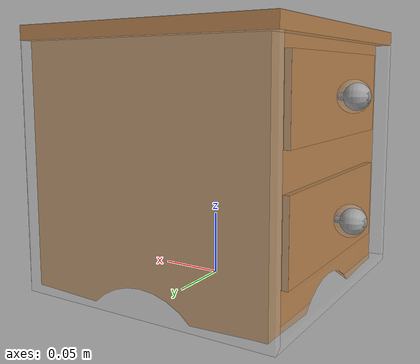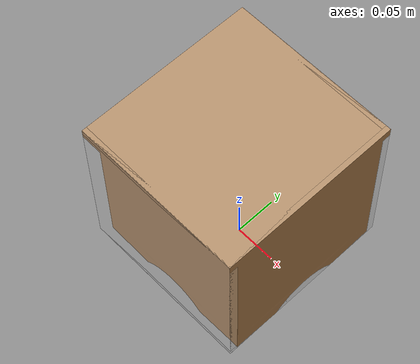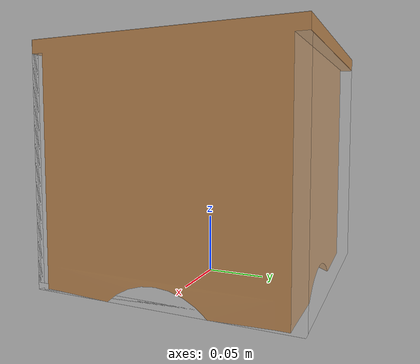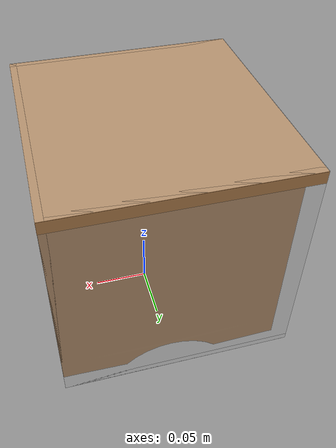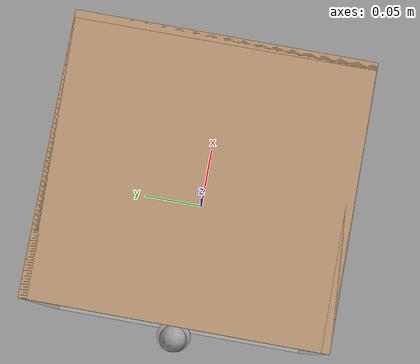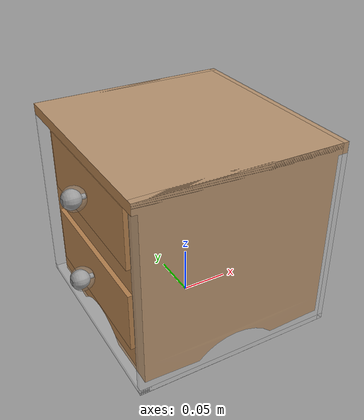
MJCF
<mujoco model="round_cabinet">
    <compiler angle="radian" meshdir="./" />
    <size njmax="500" nconmax="100" />
    <asset>
        <texture file="round_cabinet/wood.png" name="tex-wood" type="2d"/>
        <material name="wood_mat" reflectance="0.3" texrepeat="1 1" texture="tex-wood" texuniform="false"/>

        <mesh name="body_vis"          file="round_cabinet/body.obj"/>
        <mesh name="drawer_top_vis"    file="round_cabinet/drawer_top.obj"/>
        <mesh name="drawer_bottom_vis" file="round_cabinet/drawer_bottom.obj"/>
        <mesh name="handle_top_vis"    file="round_cabinet/handle_top.obj"/>
        <mesh name="handle_bottom_vis" file="round_cabinet/handle_bottom.obj"/>
    </asset>
    <worldbody>
        <body>
          <body name="object">
            <body name="base" pos="0 0 0">

              <!-- Visual -->
              <geom type="mesh" mesh="body_vis" conaffinity="0" contype="0" group="1" material="wood_mat"/>

              <!-- Body collision: back (+x), two sides (±y), top, bottom -->
              <geom type="box" pos=" 0.097  0.000 0.100" size="0.003 0.110 0.101"
                    rgba="0.8 0.8 0.8 0.3" group="0"
                    solimp="0.998 0.998 0.001" solref="0.001 1" density="10000" friction="0.95 0.3 0.1"/>
              <geom type="box" pos="-0.005 -0.107 0.100" size="0.105 0.003 0.101"
                    rgba="0.8 0.8 0.8 0.3" group="0"
                    solimp="0.998 0.998 0.001" solref="0.001 1" density="10000" friction="0.95 0.3 0.1"/>
              <geom type="box" pos="-0.005  0.107 0.100" size="0.105 0.003 0.101"
                    rgba="0.8 0.8 0.8 0.3" group="0"
                    solimp="0.998 0.998 0.001" solref="0.001 1" density="10000" friction="0.95 0.3 0.1"/>
              <geom type="box" pos="-0.005  0.000 0.198" size="0.105 0.110 0.003"
                    rgba="0.8 0.8 0.8 0.3" group="0"
                    solimp="0.998 0.998 0.001" solref="0.001 1" density="10000" friction="0.95 0.3 0.1"/>
              <geom type="box" pos="-0.005  0.000 0.002" size="0.105 0.110 0.003"
                    rgba="0.8 0.8 0.8 0.3" group="0"
                    solimp="0.998 0.998 0.001" solref="0.001 1" density="10000" friction="0.95 0.3 0.1"/>

              <!-- Top drawer: slides in -X direction when opening -->
              <body name="drawer_top" pos="0 0 0">
                <inertial pos="0 0 0" mass="1" diaginertia="0.1 0.1 0.1"/>
                <joint name="drawer_top_joint_0" type="slide"
                       axis="-1 0 0" range="0.0 0.049"
                       limited="true" damping="5" frictionloss="2"/>
                <geom type="mesh" mesh="drawer_top_vis"  conaffinity="0" contype="0" group="1" material="wood_mat"/>
                <geom type="mesh" mesh="handle_top_vis"  conaffinity="0" contype="0" group="1" rgba="0.55 0.55 0.55 1"/>
                <!-- drawer box -->
                <geom type="box" pos="-0.0173 0.0001 0.1500" size="0.0874 0.0821 0.0309"
                      rgba="0.8 0.8 0.8 0.3" group="0"
                      solimp="0.998 0.998 0.001" solref="0.001 1" density="100" friction="0.95 0.3 0.1"/>
                <!-- sphere handle -->
                <geom type="sphere" pos="-0.1158 0.0001 0.1497" size="0.0122"
                      rgba="0.8 0.8 0.8 0.3" group="0"
                      solimp="0.998 0.998 0.001" solref="0.001 1" density="100" friction="0.95 0.3 0.1"/>
              </body>

              <!-- Bottom drawer -->
              <body name="drawer_bottom" pos="0 0 0">
                <inertial pos="0 0 0" mass="1" diaginertia="0.1 0.1 0.1"/>
                <joint name="drawer_bottom_joint_0" type="slide"
                       axis="-1 0 0" range="0.0 0.049"
                       limited="true" damping="5" frictionloss="2"/>
                <geom type="mesh" mesh="drawer_bottom_vis" conaffinity="0" contype="0" group="1" material="wood_mat"/>
                <geom type="mesh" mesh="handle_bottom_vis" conaffinity="0" contype="0" group="1" rgba="0.55 0.55 0.55 1"/>
                <!-- drawer box -->
                <geom type="box" pos="-0.0173 0.0001 0.0600" size="0.0874 0.0821 0.0309"
                      rgba="0.8 0.8 0.8 0.3" group="0"
                      solimp="0.998 0.998 0.001" solref="0.001 1" density="100" friction="0.95 0.3 0.1"/>
                <!-- sphere handle -->
                <geom type="sphere" pos="-0.1158 0.0001 0.0591" size="0.0122"
                      rgba="0.8 0.8 0.8 0.3" group="0"
                      solimp="0.998 0.998 0.001" solref="0.001 1" density="100" friction="0.95 0.3 0.1"/>
              </body>

            </body>
          </body>
          <site rgba="0 0 0 0" size="0.05" pos="0 0 0"     name="bottom_site"/>
          <site rgba="0 0 0 0" size="0.05" pos="0 0 0.201" name="top_site"/>
          <site rgba="0 0 0 0" size="0.05" pos="0.110 0.110 0" name="horizontal_radius_site"/>
        </body>
    </worldbody>
</mujoco>
